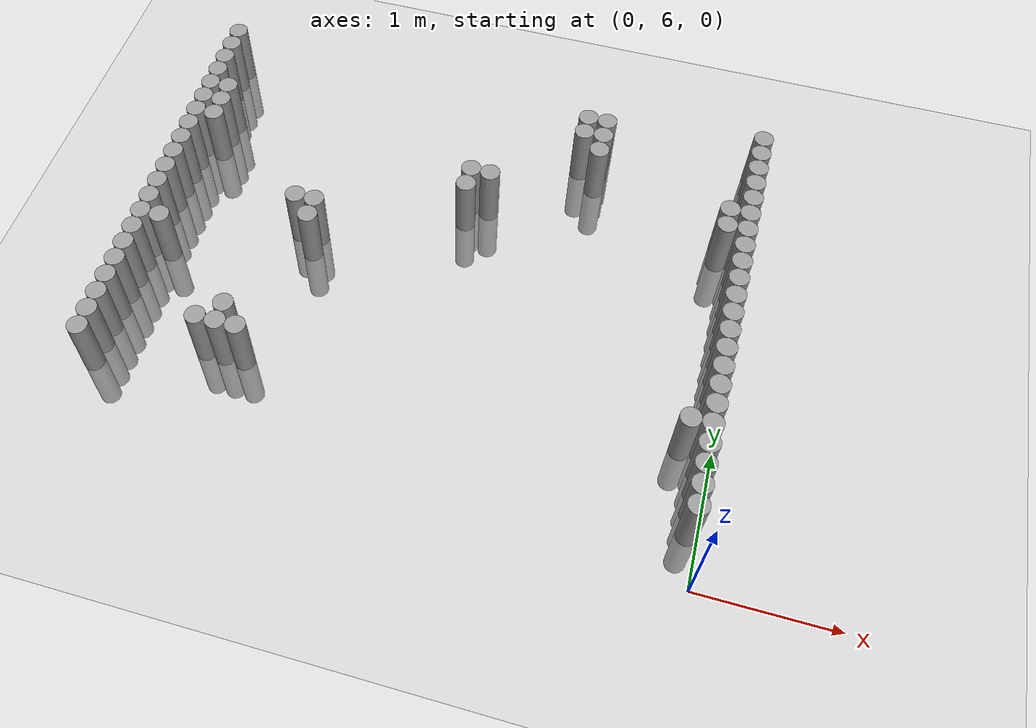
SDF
<sdf version="1.6">
 <world name="default">
  <model name="ground_plane">
   <static>1</static>
   <link name="link">
    <collision name="collision">
     <geometry><plane><normal>0 0 1</normal><size>100 100</size></plane></geometry>
     <surface><friction><ode><mu>100</mu><mu2>50</mu2></ode></friction></surface>
    </collision>
    <visual name="visual">
     <cast_shadows>0</cast_shadows>
     <geometry><plane><normal>0 0 1</normal><size>100 100</size></plane></geometry>
     <material>
      <script><uri>file://media/materials/scripts/gazebo.material</uri><name>Gazebo/Grey</name></script>
     </material>
    </visual>
   </link>
  </model>
  <model name="unit_cylinder_105">
   <pose>-4.425000 6.525000 0.000000 0.000000 0.000000 0.000000</pose>
   <link name="link">
    <inertial>
     <mass>1</mass>
     <inertia><ixx>0.145833</ixx><ixy>0</ixy><ixz>0</ixz><iyy>0.145833</iyy><iyz>0</iyz><izz>0.125</izz></inertia>
    </inertial>
    <collision name="collision">
     <geometry><cylinder><radius>0.075000</radius><length>1</length></cylinder></geometry>
    </collision>
    <visual name="visual">
     <geometry><cylinder><radius>0.075000</radius><length>1</length></cylinder></geometry>
     <material>
      <script><name>Gazebo/Grey</name><uri>file://media/materials/scripts/gazebo.material</uri></script>
     </material>
    </visual>
   </link>
  </model>
  <model name="unit_cylinder_106">
   <pose>-4.425000 6.675000 0.000000 0.000000 0.000000 0.000000</pose>
   <link name="link">
    <inertial>
     <mass>1</mass>
     <inertia><ixx>0.145833</ixx><ixy>0</ixy><ixz>0</ixz><iyy>0.145833</iyy><iyz>0</iyz><izz>0.125</izz></inertia>
    </inertial>
    <collision name="collision">
     <geometry><cylinder><radius>0.075000</radius><length>1</length></cylinder></geometry>
    </collision>
    <visual name="visual">
     <geometry><cylinder><radius>0.075000</radius><length>1</length></cylinder></geometry>
     <material>
      <script><name>Gazebo/Grey</name><uri>file://media/materials/scripts/gazebo.material</uri></script>
     </material>
    </visual>
   </link>
  </model>
  <model name="unit_cylinder_107">
   <pose>-4.425000 6.825000 0.000000 0.000000 0.000000 0.000000</pose>
   <link name="link">
    <inertial>
     <mass>1</mass>
     <inertia><ixx>0.145833</ixx><ixy>0</ixy><ixz>0</ixz><iyy>0.145833</iyy><iyz>0</iyz><izz>0.125</izz></inertia>
    </inertial>
    <collision name="collision">
     <geometry><cylinder><radius>0.075000</radius><length>1</length></cylinder></geometry>
    </collision>
    <visual name="visual">
     <geometry><cylinder><radius>0.075000</radius><length>1</length></cylinder></geometry>
     <material>
      <script><name>Gazebo/Grey</name><uri>file://media/materials/scripts/gazebo.material</uri></script>
     </material>
    </visual>
   </link>
  </model>
  <model name="unit_cylinder_108">
   <pose>-4.425000 6.975000 0.000000 0.000000 0.000000 0.000000</pose>
   <link name="link">
    <inertial>
     <mass>1</mass>
     <inertia><ixx>0.145833</ixx><ixy>0</ixy><ixz>0</ixz><iyy>0.145833</iyy><iyz>0</iyz><izz>0.125</izz></inertia>
    </inertial>
    <collision name="collision">
     <geometry><cylinder><radius>0.075000</radius><length>1</length></cylinder></geometry>
    </collision>
    <visual name="visual">
     <geometry><cylinder><radius>0.075000</radius><length>1</length></cylinder></geometry>
     <material>
      <script><name>Gazebo/Grey</name><uri>file://media/materials/scripts/gazebo.material</uri></script>
     </material>
    </visual>
   </link>
  </model>
  <model name="unit_cylinder_109">
   <pose>-4.425000 7.125000 0.000000 0.000000 0.000000 0.000000</pose>
   <link name="link">
    <inertial>
     <mass>1</mass>
     <inertia><ixx>0.145833</ixx><ixy>0</ixy><ixz>0</ixz><iyy>0.145833</iyy><iyz>0</iyz><izz>0.125</izz></inertia>
    </inertial>
    <collision name="collision">
     <geometry><cylinder><radius>0.075000</radius><length>1</length></cylinder></geometry>
    </collision>
    <visual name="visual">
     <geometry><cylinder><radius>0.075000</radius><length>1</length></cylinder></geometry>
     <material>
      <script><name>Gazebo/Grey</name><uri>file://media/materials/scripts/gazebo.material</uri></script>
     </material>
    </visual>
   </link>
  </model>
  <model name="unit_cylinder_110">
   <pose>-4.425000 7.275000 0.000000 0.000000 0.000000 0.000000</pose>
   <link name="link">
    <inertial>
     <mass>1</mass>
     <inertia><ixx>0.145833</ixx><ixy>0</ixy><ixz>0</ixz><iyy>0.145833</iyy><iyz>0</iyz><izz>0.125</izz></inertia>
    </inertial>
    <collision name="collision">
     <geometry><cylinder><radius>0.075000</radius><length>1</length></cylinder></geometry>
    </collision>
    <visual name="visual">
     <geometry><cylinder><radius>0.075000</radius><length>1</length></cylinder></geometry>
     <material>
      <script><name>Gazebo/Grey</name><uri>file://media/materials/scripts/gazebo.material</uri></script>
     </material>
    </visual>
   </link>
  </model>
  <model name="unit_cylinder_111">
   <pose>-4.425000 7.425000 0.000000 0.000000 0.000000 0.000000</pose>
   <link name="link">
    <inertial>
     <mass>1</mass>
     <inertia><ixx>0.145833</ixx><ixy>0</ixy><ixz>0</ixz><iyy>0.145833</iyy><iyz>0</iyz><izz>0.125</izz></inertia>
    </inertial>
    <collision name="collision">
     <geometry><cylinder><radius>0.075000</radius><length>1</length></cylinder></geometry>
    </collision>
    <visual name="visual">
     <geometry><cylinder><radius>0.075000</radius><length>1</length></cylinder></geometry>
     <material>
      <script><name>Gazebo/Grey</name><uri>file://media/materials/scripts/gazebo.material</uri></script>
     </material>
    </visual>
   </link>
  </model>
  <model name="unit_cylinder_112">
   <pose>-4.425000 7.575000 0.000000 0.000000 0.000000 0.000000</pose>
   <link name="link">
    <inertial>
     <mass>1</mass>
     <inertia><ixx>0.145833</ixx><ixy>0</ixy><ixz>0</ixz><iyy>0.145833</iyy><iyz>0</iyz><izz>0.125</izz></inertia>
    </inertial>
    <collision name="collision">
     <geometry><cylinder><radius>0.075000</radius><length>1</length></cylinder></geometry>
    </collision>
    <visual name="visual">
     <geometry><cylinder><radius>0.075000</radius><length>1</length></cylinder></geometry>
     <material>
      <script><name>Gazebo/Grey</name><uri>file://media/materials/scripts/gazebo.material</uri></script>
     </material>
    </visual>
   </link>
  </model>
  <model name="unit_cylinder_113">
   <pose>-4.425000 7.725000 0.000000 0.000000 0.000000 0.000000</pose>
   <link name="link">
    <inertial>
     <mass>1</mass>
     <inertia><ixx>0.145833</ixx><ixy>0</ixy><ixz>0</ixz><iyy>0.145833</iyy><iyz>0</iyz><izz>0.125</izz></inertia>
    </inertial>
    <collision name="collision">
     <geometry><cylinder><radius>0.075000</radius><length>1</length></cylinder></geometry>
    </collision>
    <visual name="visual">
     <geometry><cylinder><radius>0.075000</radius><length>1</length></cylinder></geometry>
     <material>
      <script><name>Gazebo/Grey</name><uri>file://media/materials/scripts/gazebo.material</uri></script>
     </material>
    </visual>
   </link>
  </model>
  <model name="unit_cylinder_114">
   <pose>-4.425000 7.875000 0.000000 0.000000 0.000000 0.000000</pose>
   <link name="link">
    <inertial>
     <mass>1</mass>
     <inertia><ixx>0.145833</ixx><ixy>0</ixy><ixz>0</ixz><iyy>0.145833</iyy><iyz>0</iyz><izz>0.125</izz></inertia>
    </inertial>
    <collision name="collision">
     <geometry><cylinder><radius>0.075000</radius><length>1</length></cylinder></geometry>
    </collision>
    <visual name="visual">
     <geometry><cylinder><radius>0.075000</radius><length>1</length></cylinder></geometry>
     <material>
      <script><name>Gazebo/Grey</name><uri>file://media/materials/scripts/gazebo.material</uri></script>
     </material>
    </visual>
   </link>
  </model>
  <model name="unit_cylinder_115">
   <pose>-4.425000 8.025000 0.000000 0.000000 0.000000 0.000000</pose>
   <link name="link">
    <inertial>
     <mass>1</mass>
     <inertia><ixx>0.145833</ixx><ixy>0</ixy><ixz>0</ixz><iyy>0.145833</iyy><iyz>0</iyz><izz>0.125</izz></inertia>
    </inertial>
    <collision name="collision">
     <geometry><cylinder><radius>0.075000</radius><length>1</length></cylinder></geometry>
    </collision>
    <visual name="visual">
     <geometry><cylinder><radius>0.075000</radius><length>1</length></cylinder></geometry>
     <material>
      <script><name>Gazebo/Grey</name><uri>file://media/materials/scripts/gazebo.material</uri></script>
     </material>
    </visual>
   </link>
  </model>
  <model name="unit_cylinder_116">
   <pose>-4.425000 8.175000 0.000000 0.000000 0.000000 0.000000</pose>
   <link name="link">
    <inertial>
     <mass>1</mass>
     <inertia><ixx>0.145833</ixx><ixy>0</ixy><ixz>0</ixz><iyy>0.145833</iyy><iyz>0</iyz><izz>0.125</izz></inertia>
    </inertial>
    <collision name="collision">
     <geometry><cylinder><radius>0.075000</radius><length>1</length></cylinder></geometry>
    </collision>
    <visual name="visual">
     <geometry><cylinder><radius>0.075000</radius><length>1</length></cylinder></geometry>
     <material>
      <script><name>Gazebo/Grey</name><uri>file://media/materials/scripts/gazebo.material</uri></script>
     </material>
    </visual>
   </link>
  </model>
  <model name="unit_cylinder_117">
   <pose>-4.425000 8.325000 0.000000 0.000000 0.000000 0.000000</pose>
   <link name="link">
    <inertial>
     <mass>1</mass>
     <inertia><ixx>0.145833</ixx><ixy>0</ixy><ixz>0</ixz><iyy>0.145833</iyy><iyz>0</iyz><izz>0.125</izz></inertia>
    </inertial>
    <collision name="collision">
     <geometry><cylinder><radius>0.075000</radius><length>1</length></cylinder></geometry>
    </collision>
    <visual name="visual">
     <geometry><cylinder><radius>0.075000</radius><length>1</length></cylinder></geometry>
     <material>
      <script><name>Gazebo/Grey</name><uri>file://media/materials/scripts/gazebo.material</uri></script>
     </material>
    </visual>
   </link>
  </model>
  <model name="unit_cylinder_118">
   <pose>-4.425000 8.475000 0.000000 0.000000 0.000000 0.000000</pose>
   <link name="link">
    <inertial>
     <mass>1</mass>
     <inertia><ixx>0.145833</ixx><ixy>0</ixy><ixz>0</ixz><iyy>0.145833</iyy><iyz>0</iyz><izz>0.125</izz></inertia>
    </inertial>
    <collision name="collision">
     <geometry><cylinder><radius>0.075000</radius><length>1</length></cylinder></geometry>
    </collision>
    <visual name="visual">
     <geometry><cylinder><radius>0.075000</radius><length>1</length></cylinder></geometry>
     <material>
      <script><name>Gazebo/Grey</name><uri>file://media/materials/scripts/gazebo.material</uri></script>
     </material>
    </visual>
   </link>
  </model>
  <model name="unit_cylinder_119">
   <pose>-4.425000 8.625000 0.000000 0.000000 0.000000 0.000000</pose>
   <link name="link">
    <inertial>
     <mass>1</mass>
     <inertia><ixx>0.145833</ixx><ixy>0</ixy><ixz>0</ixz><iyy>0.145833</iyy><iyz>0</iyz><izz>0.125</izz></inertia>
    </inertial>
    <collision name="collision">
     <geometry><cylinder><radius>0.075000</radius><length>1</length></cylinder></geometry>
    </collision>
    <visual name="visual">
     <geometry><cylinder><radius>0.075000</radius><length>1</length></cylinder></geometry>
     <material>
      <script><name>Gazebo/Grey</name><uri>file://media/materials/scripts/gazebo.material</uri></script>
     </material>
    </visual>
   </link>
  </model>
  <model name="unit_cylinder_120">
   <pose>-4.425000 8.775000 0.000000 0.000000 0.000000 0.000000</pose>
   <link name="link">
    <inertial>
     <mass>1</mass>
     <inertia><ixx>0.145833</ixx><ixy>0</ixy><ixz>0</ixz><iyy>0.145833</iyy><iyz>0</iyz><izz>0.125</izz></inertia>
    </inertial>
    <collision name="collision">
     <geometry><cylinder><radius>0.075000</radius><length>1</length></cylinder></geometry>
    </collision>
    <visual name="visual">
     <geometry><cylinder><radius>0.075000</radius><length>1</length></cylinder></geometry>
     <material>
      <script><name>Gazebo/Grey</name><uri>file://media/materials/scripts/gazebo.material</uri></script>
     </material>
    </visual>
   </link>
  </model>
  <model name="unit_cylinder_121">
   <pose>-4.425000 8.925000 0.000000 0.000000 0.000000 0.000000</pose>
   <link name="link">
    <inertial>
     <mass>1</mass>
     <inertia><ixx>0.145833</ixx><ixy>0</ixy><ixz>0</ixz><iyy>0.145833</iyy><iyz>0</iyz><izz>0.125</izz></inertia>
    </inertial>
    <collision name="collision">
     <geometry><cylinder><radius>0.075000</radius><length>1</length></cylinder></geometry>
    </collision>
    <visual name="visual">
     <geometry><cylinder><radius>0.075000</radius><length>1</length></cylinder></geometry>
     <material>
      <script><name>Gazebo/Grey</name><uri>file://media/materials/scripts/gazebo.material</uri></script>
     </material>
    </visual>
   </link>
  </model>
  <model name="unit_cylinder_122">
   <pose>-4.425000 9.075000 0.000000 0.000000 0.000000 0.000000</pose>
   <link name="link">
    <inertial>
     <mass>1</mass>
     <inertia><ixx>0.145833</ixx><ixy>0</ixy><ixz>0</ixz><iyy>0.145833</iyy><iyz>0</iyz><izz>0.125</izz></inertia>
    </inertial>
    <collision name="collision">
     <geometry><cylinder><radius>0.075000</radius><length>1</length></cylinder></geometry>
    </collision>
    <visual name="visual">
     <geometry><cylinder><radius>0.075000</radius><length>1</length></cylinder></geometry>
     <material>
      <script><name>Gazebo/Grey</name><uri>file://media/materials/scripts/gazebo.material</uri></script>
     </material>
    </visual>
   </link>
  </model>
  <model name="unit_cylinder_123">
   <pose>-4.425000 9.225000 0.000000 0.000000 0.000000 0.000000</pose>
   <link name="link">
    <inertial>
     <mass>1</mass>
     <inertia><ixx>0.145833</ixx><ixy>0</ixy><ixz>0</ixz><iyy>0.145833</iyy><iyz>0</iyz><izz>0.125</izz></inertia>
    </inertial>
    <collision name="collision">
     <geometry><cylinder><radius>0.075000</radius><length>1</length></cylinder></geometry>
    </collision>
    <visual name="visual">
     <geometry><cylinder><radius>0.075000</radius><length>1</length></cylinder></geometry>
     <material>
      <script><name>Gazebo/Grey</name><uri>file://media/materials/scripts/gazebo.material</uri></script>
     </material>
    </visual>
   </link>
  </model>
  <model name="unit_cylinder_124">
   <pose>-4.425000 9.375000 0.000000 0.000000 0.000000 0.000000</pose>
   <link name="link">
    <inertial>
     <mass>1</mass>
     <inertia><ixx>0.145833</ixx><ixy>0</ixy><ixz>0</ixz><iyy>0.145833</iyy><iyz>0</iyz><izz>0.125</izz></inertia>
    </inertial>
    <collision name="collision">
     <geometry><cylinder><radius>0.075000</radius><length>1</length></cylinder></geometry>
    </collision>
    <visual name="visual">
     <geometry><cylinder><radius>0.075000</radius><length>1</length></cylinder></geometry>
     <material>
      <script><name>Gazebo/Grey</name><uri>file://media/materials/scripts/gazebo.material</uri></script>
     </material>
    </visual>
   </link>
  </model>
  <model name="unit_cylinder_125">
   <pose>-4.425000 9.525000 0.000000 0.000000 0.000000 0.000000</pose>
   <link name="link">
    <inertial>
     <mass>1</mass>
     <inertia><ixx>0.145833</ixx><ixy>0</ixy><ixz>0</ixz><iyy>0.145833</iyy><iyz>0</iyz><izz>0.125</izz></inertia>
    </inertial>
    <collision name="collision">
     <geometry><cylinder><radius>0.075000</radius><length>1</length></cylinder></geometry>
    </collision>
    <visual name="visual">
     <geometry><cylinder><radius>0.075000</radius><length>1</length></cylinder></geometry>
     <material>
      <script><name>Gazebo/Grey</name><uri>file://media/materials/scripts/gazebo.material</uri></script>
     </material>
    </visual>
   </link>
  </model>
  <model name="unit_cylinder_128">
   <pose>-4.275000 7.575000 0.000000 0.000000 0.000000 0.000000</pose>
   <link name="link">
    <inertial>
     <mass>1</mass>
     <inertia><ixx>0.145833</ixx><ixy>0</ixy><ixz>0</ixz><iyy>0.145833</iyy><iyz>0</iyz><izz>0.125</izz></inertia>
    </inertial>
    <collision name="collision">
     <geometry><cylinder><radius>0.075000</radius><length>1</length></cylinder></geometry>
    </collision>
    <visual name="visual">
     <geometry><cylinder><radius>0.075000</radius><length>1</length></cylinder></geometry>
     <material>
      <script><name>Gazebo/Grey</name><uri>file://media/materials/scripts/gazebo.material</uri></script>
     </material>
    </visual>
   </link>
  </model>
  <model name="unit_cylinder_129">
   <pose>-4.275000 8.625000 0.000000 0.000000 0.000000 0.000000</pose>
   <link name="link">
    <inertial>
     <mass>1</mass>
     <inertia><ixx>0.145833</ixx><ixy>0</ixy><ixz>0</ixz><iyy>0.145833</iyy><iyz>0</iyz><izz>0.125</izz></inertia>
    </inertial>
    <collision name="collision">
     <geometry><cylinder><radius>0.075000</radius><length>1</length></cylinder></geometry>
    </collision>
    <visual name="visual">
     <geometry><cylinder><radius>0.075000</radius><length>1</length></cylinder></geometry>
     <material>
      <script><name>Gazebo/Grey</name><uri>file://media/materials/scripts/gazebo.material</uri></script>
     </material>
    </visual>
   </link>
  </model>
  <model name="unit_cylinder_130">
   <pose>-4.275000 8.775000 0.000000 0.000000 0.000000 0.000000</pose>
   <link name="link">
    <inertial>
     <mass>1</mass>
     <inertia><ixx>0.145833</ixx><ixy>0</ixy><ixz>0</ixz><iyy>0.145833</iyy><iyz>0</iyz><izz>0.125</izz></inertia>
    </inertial>
    <collision name="collision">
     <geometry><cylinder><radius>0.075000</radius><length>1</length></cylinder></geometry>
    </collision>
    <visual name="visual">
     <geometry><cylinder><radius>0.075000</radius><length>1</length></cylinder></geometry>
     <material>
      <script><name>Gazebo/Grey</name><uri>file://media/materials/scripts/gazebo.material</uri></script>
     </material>
    </visual>
   </link>
  </model>
  <model name="unit_cylinder_131">
   <pose>-4.275000 8.925000 0.000000 0.000000 0.000000 0.000000</pose>
   <link name="link">
    <inertial>
     <mass>1</mass>
     <inertia><ixx>0.145833</ixx><ixy>0</ixy><ixz>0</ixz><iyy>0.145833</iyy><iyz>0</iyz><izz>0.125</izz></inertia>
    </inertial>
    <collision name="collision">
     <geometry><cylinder><radius>0.075000</radius><length>1</length></cylinder></geometry>
    </collision>
    <visual name="visual">
     <geometry><cylinder><radius>0.075000</radius><length>1</length></cylinder></geometry>
     <material>
      <script><name>Gazebo/Grey</name><uri>file://media/materials/scripts/gazebo.material</uri></script>
     </material>
    </visual>
   </link>
  </model>
  <model name="unit_cylinder_132">
   <pose>-3.675000 6.825000 0.000000 0.000000 0.000000 0.000000</pose>
   <link name="link">
    <inertial>
     <mass>1</mass>
     <inertia><ixx>0.145833</ixx><ixy>0</ixy><ixz>0</ixz><iyy>0.145833</iyy><iyz>0</iyz><izz>0.125</izz></inertia>
    </inertial>
    <collision name="collision">
     <geometry><cylinder><radius>0.075000</radius><length>1</length></cylinder></geometry>
    </collision>
    <visual name="visual">
     <geometry><cylinder><radius>0.075000</radius><length>1</length></cylinder></geometry>
     <material>
      <script><name>Gazebo/Grey</name><uri>file://media/materials/scripts/gazebo.material</uri></script>
     </material>
    </visual>
   </link>
  </model>
  <model name="unit_cylinder_133">
   <pose>-3.525000 6.825000 0.000000 0.000000 0.000000 0.000000</pose>
   <link name="link">
    <inertial>
     <mass>1</mass>
     <inertia><ixx>0.145833</ixx><ixy>0</ixy><ixz>0</ixz><iyy>0.145833</iyy><iyz>0</iyz><izz>0.125</izz></inertia>
    </inertial>
    <collision name="collision">
     <geometry><cylinder><radius>0.075000</radius><length>1</length></cylinder></geometry>
    </collision>
    <visual name="visual">
     <geometry><cylinder><radius>0.075000</radius><length>1</length></cylinder></geometry>
     <material>
      <script><name>Gazebo/Grey</name><uri>file://media/materials/scripts/gazebo.material</uri></script>
     </material>
    </visual>
   </link>
  </model>
  <model name="unit_cylinder_134">
   <pose>-3.525000 6.975000 0.000000 0.000000 0.000000 0.000000</pose>
   <link name="link">
    <inertial>
     <mass>1</mass>
     <inertia><ixx>0.145833</ixx><ixy>0</ixy><ixz>0</ixz><iyy>0.145833</iyy><iyz>0</iyz><izz>0.125</izz></inertia>
    </inertial>
    <collision name="collision">
     <geometry><cylinder><radius>0.075000</radius><length>1</length></cylinder></geometry>
    </collision>
    <visual name="visual">
     <geometry><cylinder><radius>0.075000</radius><length>1</length></cylinder></geometry>
     <material>
      <script><name>Gazebo/Grey</name><uri>file://media/materials/scripts/gazebo.material</uri></script>
     </material>
    </visual>
   </link>
  </model>
  <model name="unit_cylinder_135">
   <pose>-3.375000 6.825000 0.000000 0.000000 0.000000 0.000000</pose>
   <link name="link">
    <inertial>
     <mass>1</mass>
     <inertia><ixx>0.145833</ixx><ixy>0</ixy><ixz>0</ixz><iyy>0.145833</iyy><iyz>0</iyz><izz>0.125</izz></inertia>
    </inertial>
    <collision name="collision">
     <geometry><cylinder><radius>0.075000</radius><length>1</length></cylinder></geometry>
    </collision>
    <visual name="visual">
     <geometry><cylinder><radius>0.075000</radius><length>1</length></cylinder></geometry>
     <material>
      <script><name>Gazebo/Grey</name><uri>file://media/materials/scripts/gazebo.material</uri></script>
     </material>
    </visual>
   </link>
  </model>
  <model name="unit_cylinder_136">
   <pose>-3.375000 8.025000 0.000000 0.000000 0.000000 0.000000</pose>
   <link name="link">
    <inertial>
     <mass>1</mass>
     <inertia><ixx>0.145833</ixx><ixy>0</ixy><ixz>0</ixz><iyy>0.145833</iyy><iyz>0</iyz><izz>0.125</izz></inertia>
    </inertial>
    <collision name="collision">
     <geometry><cylinder><radius>0.075000</radius><length>1</length></cylinder></geometry>
    </collision>
    <visual name="visual">
     <geometry><cylinder><radius>0.075000</radius><length>1</length></cylinder></geometry>
     <material>
      <script><name>Gazebo/Grey</name><uri>file://media/materials/scripts/gazebo.material</uri></script>
     </material>
    </visual>
   </link>
  </model>
  <model name="unit_cylinder_137">
   <pose>-3.225000 7.875000 0.000000 0.000000 0.000000 0.000000</pose>
   <link name="link">
    <inertial>
     <mass>1</mass>
     <inertia><ixx>0.145833</ixx><ixy>0</ixy><ixz>0</ixz><iyy>0.145833</iyy><iyz>0</iyz><izz>0.125</izz></inertia>
    </inertial>
    <collision name="collision">
     <geometry><cylinder><radius>0.075000</radius><length>1</length></cylinder></geometry>
    </collision>
    <visual name="visual">
     <geometry><cylinder><radius>0.075000</radius><length>1</length></cylinder></geometry>
     <material>
      <script><name>Gazebo/Grey</name><uri>file://media/materials/scripts/gazebo.material</uri></script>
     </material>
    </visual>
   </link>
  </model>
  <model name="unit_cylinder_138">
   <pose>-3.225000 8.025000 0.000000 0.000000 0.000000 0.000000</pose>
   <link name="link">
    <inertial>
     <mass>1</mass>
     <inertia><ixx>0.145833</ixx><ixy>0</ixy><ixz>0</ixz><iyy>0.145833</iyy><iyz>0</iyz><izz>0.125</izz></inertia>
    </inertial>
    <collision name="collision">
     <geometry><cylinder><radius>0.075000</radius><length>1</length></cylinder></geometry>
    </collision>
    <visual name="visual">
     <geometry><cylinder><radius>0.075000</radius><length>1</length></cylinder></geometry>
     <material>
      <script><name>Gazebo/Grey</name><uri>file://media/materials/scripts/gazebo.material</uri></script>
     </material>
    </visual>
   </link>
  </model>
  <model name="unit_cylinder_149">
   <pose>-2.175000 8.475000 0.000000 0.000000 0.000000 0.000000</pose>
   <link name="link">
    <inertial>
     <mass>1</mass>
     <inertia><ixx>0.145833</ixx><ixy>0</ixy><ixz>0</ixz><iyy>0.145833</iyy><iyz>0</iyz><izz>0.125</izz></inertia>
    </inertial>
    <collision name="collision">
     <geometry><cylinder><radius>0.075000</radius><length>1</length></cylinder></geometry>
    </collision>
    <visual name="visual">
     <geometry><cylinder><radius>0.075000</radius><length>1</length></cylinder></geometry>
     <material>
      <script><name>Gazebo/Grey</name><uri>file://media/materials/scripts/gazebo.material</uri></script>
     </material>
    </visual>
   </link>
  </model>
  <model name="unit_cylinder_150">
   <pose>-2.175000 8.625000 0.000000 0.000000 0.000000 0.000000</pose>
   <link name="link">
    <inertial>
     <mass>1</mass>
     <inertia><ixx>0.145833</ixx><ixy>0</ixy><ixz>0</ixz><iyy>0.145833</iyy><iyz>0</iyz><izz>0.125</izz></inertia>
    </inertial>
    <collision name="collision">
     <geometry><cylinder><radius>0.075000</radius><length>1</length></cylinder></geometry>
    </collision>
    <visual name="visual">
     <geometry><cylinder><radius>0.075000</radius><length>1</length></cylinder></geometry>
     <material>
      <script><name>Gazebo/Grey</name><uri>file://media/materials/scripts/gazebo.material</uri></script>
     </material>
    </visual>
   </link>
  </model>
  <model name="unit_cylinder_151">
   <pose>-2.025000 8.625000 0.000000 0.000000 0.000000 0.000000</pose>
   <link name="link">
    <inertial>
     <mass>1</mass>
     <inertia><ixx>0.145833</ixx><ixy>0</ixy><ixz>0</ixz><iyy>0.145833</iyy><iyz>0</iyz><izz>0.125</izz></inertia>
    </inertial>
    <collision name="collision">
     <geometry><cylinder><radius>0.075000</radius><length>1</length></cylinder></geometry>
    </collision>
    <visual name="visual">
     <geometry><cylinder><radius>0.075000</radius><length>1</length></cylinder></geometry>
     <material>
      <script><name>Gazebo/Grey</name><uri>file://media/materials/scripts/gazebo.material</uri></script>
     </material>
    </visual>
   </link>
  </model>
  <model name="unit_cylinder_152">
   <pose>-1.425000 9.225000 0.000000 0.000000 0.000000 0.000000</pose>
   <link name="link">
    <inertial>
     <mass>1</mass>
     <inertia><ixx>0.145833</ixx><ixy>0</ixy><ixz>0</ixz><iyy>0.145833</iyy><iyz>0</iyz><izz>0.125</izz></inertia>
    </inertial>
    <collision name="collision">
     <geometry><cylinder><radius>0.075000</radius><length>1</length></cylinder></geometry>
    </collision>
    <visual name="visual">
     <geometry><cylinder><radius>0.075000</radius><length>1</length></cylinder></geometry>
     <material>
      <script><name>Gazebo/Grey</name><uri>file://media/materials/scripts/gazebo.material</uri></script>
     </material>
    </visual>
   </link>
  </model>
  <model name="unit_cylinder_153">
   <pose>-1.425000 9.375000 0.000000 0.000000 0.000000 0.000000</pose>
   <link name="link">
    <inertial>
     <mass>1</mass>
     <inertia><ixx>0.145833</ixx><ixy>0</ixy><ixz>0</ixz><iyy>0.145833</iyy><iyz>0</iyz><izz>0.125</izz></inertia>
    </inertial>
    <collision name="collision">
     <geometry><cylinder><radius>0.075000</radius><length>1</length></cylinder></geometry>
    </collision>
    <visual name="visual">
     <geometry><cylinder><radius>0.075000</radius><length>1</length></cylinder></geometry>
     <material>
      <script><name>Gazebo/Grey</name><uri>file://media/materials/scripts/gazebo.material</uri></script>
     </material>
    </visual>
   </link>
  </model>
  <model name="unit_cylinder_154">
   <pose>-1.275000 9.075000 0.000000 0.000000 0.000000 0.000000</pose>
   <link name="link">
    <inertial>
     <mass>1</mass>
     <inertia><ixx>0.145833</ixx><ixy>0</ixy><ixz>0</ixz><iyy>0.145833</iyy><iyz>0</iyz><izz>0.125</izz></inertia>
    </inertial>
    <collision name="collision">
     <geometry><cylinder><radius>0.075000</radius><length>1</length></cylinder></geometry>
    </collision>
    <visual name="visual">
     <geometry><cylinder><radius>0.075000</radius><length>1</length></cylinder></geometry>
     <material>
      <script><name>Gazebo/Grey</name><uri>file://media/materials/scripts/gazebo.material</uri></script>
     </material>
    </visual>
   </link>
  </model>
  <model name="unit_cylinder_155">
   <pose>-1.275000 9.225000 0.000000 0.000000 0.000000 0.000000</pose>
   <link name="link">
    <inertial>
     <mass>1</mass>
     <inertia><ixx>0.145833</ixx><ixy>0</ixy><ixz>0</ixz><iyy>0.145833</iyy><iyz>0</iyz><izz>0.125</izz></inertia>
    </inertial>
    <collision name="collision">
     <geometry><cylinder><radius>0.075000</radius><length>1</length></cylinder></geometry>
    </collision>
    <visual name="visual">
     <geometry><cylinder><radius>0.075000</radius><length>1</length></cylinder></geometry>
     <material>
      <script><name>Gazebo/Grey</name><uri>file://media/materials/scripts/gazebo.material</uri></script>
     </material>
    </visual>
   </link>
  </model>
  <model name="unit_cylinder_156">
   <pose>-1.275000 9.375000 0.000000 0.000000 0.000000 0.000000</pose>
   <link name="link">
    <inertial>
     <mass>1</mass>
     <inertia><ixx>0.145833</ixx><ixy>0</ixy><ixz>0</ixz><iyy>0.145833</iyy><iyz>0</iyz><izz>0.125</izz></inertia>
    </inertial>
    <collision name="collision">
     <geometry><cylinder><radius>0.075000</radius><length>1</length></cylinder></geometry>
    </collision>
    <visual name="visual">
     <geometry><cylinder><radius>0.075000</radius><length>1</length></cylinder></geometry>
     <material>
      <script><name>Gazebo/Grey</name><uri>file://media/materials/scripts/gazebo.material</uri></script>
     </material>
    </visual>
   </link>
  </model>
  <model name="unit_cylinder_161">
   <pose>-0.225000 6.975000 0.000000 0.000000 0.000000 0.000000</pose>
   <link name="link">
    <inertial>
     <mass>1</mass>
     <inertia><ixx>0.145833</ixx><ixy>0</ixy><ixz>0</ixz><iyy>0.145833</iyy><iyz>0</iyz><izz>0.125</izz></inertia>
    </inertial>
    <collision name="collision">
     <geometry><cylinder><radius>0.075000</radius><length>1</length></cylinder></geometry>
    </collision>
    <visual name="visual">
     <geometry><cylinder><radius>0.075000</radius><length>1</length></cylinder></geometry>
     <material>
      <script><name>Gazebo/Grey</name><uri>file://media/materials/scripts/gazebo.material</uri></script>
     </material>
    </visual>
   </link>
  </model>
  <model name="unit_cylinder_162">
   <pose>-0.225000 8.625000 0.000000 0.000000 0.000000 0.000000</pose>
   <link name="link">
    <inertial>
     <mass>1</mass>
     <inertia><ixx>0.145833</ixx><ixy>0</ixy><ixz>0</ixz><iyy>0.145833</iyy><iyz>0</iyz><izz>0.125</izz></inertia>
    </inertial>
    <collision name="collision">
     <geometry><cylinder><radius>0.075000</radius><length>1</length></cylinder></geometry>
    </collision>
    <visual name="visual">
     <geometry><cylinder><radius>0.075000</radius><length>1</length></cylinder></geometry>
     <material>
      <script><name>Gazebo/Grey</name><uri>file://media/materials/scripts/gazebo.material</uri></script>
     </material>
    </visual>
   </link>
  </model>
  <model name="unit_cylinder_163">
   <pose>-0.225000 8.775000 0.000000 0.000000 0.000000 0.000000</pose>
   <link name="link">
    <inertial>
     <mass>1</mass>
     <inertia><ixx>0.145833</ixx><ixy>0</ixy><ixz>0</ixz><iyy>0.145833</iyy><iyz>0</iyz><izz>0.125</izz></inertia>
    </inertial>
    <collision name="collision">
     <geometry><cylinder><radius>0.075000</radius><length>1</length></cylinder></geometry>
    </collision>
    <visual name="visual">
     <geometry><cylinder><radius>0.075000</radius><length>1</length></cylinder></geometry>
     <material>
      <script><name>Gazebo/Grey</name><uri>file://media/materials/scripts/gazebo.material</uri></script>
     </material>
    </visual>
   </link>
  </model>
  <model name="unit_cylinder_172">
   <pose>-0.075000 6.375000 0.000000 0.000000 0.000000 0.000000</pose>
   <link name="link">
    <inertial>
     <mass>1</mass>
     <inertia><ixx>0.145833</ixx><ixy>0</ixy><ixz>0</ixz><iyy>0.145833</iyy><iyz>0</iyz><izz>0.125</izz></inertia>
    </inertial>
    <collision name="collision">
     <geometry><cylinder><radius>0.075000</radius><length>1</length></cylinder></geometry>
    </collision>
    <visual name="visual">
     <geometry><cylinder><radius>0.075000</radius><length>1</length></cylinder></geometry>
     <material>
      <script><name>Gazebo/Grey</name><uri>file://media/materials/scripts/gazebo.material</uri></script>
     </material>
    </visual>
   </link>
  </model>
  <model name="unit_cylinder_173">
   <pose>-0.075000 6.525000 0.000000 0.000000 0.000000 0.000000</pose>
   <link name="link">
    <inertial>
     <mass>1</mass>
     <inertia><ixx>0.145833</ixx><ixy>0</ixy><ixz>0</ixz><iyy>0.145833</iyy><iyz>0</iyz><izz>0.125</izz></inertia>
    </inertial>
    <collision name="collision">
     <geometry><cylinder><radius>0.075000</radius><length>1</length></cylinder></geometry>
    </collision>
    <visual name="visual">
     <geometry><cylinder><radius>0.075000</radius><length>1</length></cylinder></geometry>
     <material>
      <script><name>Gazebo/Grey</name><uri>file://media/materials/scripts/gazebo.material</uri></script>
     </material>
    </visual>
   </link>
  </model>
  <model name="unit_cylinder_174">
   <pose>-0.075000 6.675000 0.000000 0.000000 0.000000 0.000000</pose>
   <link name="link">
    <inertial>
     <mass>1</mass>
     <inertia><ixx>0.145833</ixx><ixy>0</ixy><ixz>0</ixz><iyy>0.145833</iyy><iyz>0</iyz><izz>0.125</izz></inertia>
    </inertial>
    <collision name="collision">
     <geometry><cylinder><radius>0.075000</radius><length>1</length></cylinder></geometry>
    </collision>
    <visual name="visual">
     <geometry><cylinder><radius>0.075000</radius><length>1</length></cylinder></geometry>
     <material>
      <script><name>Gazebo/Grey</name><uri>file://media/materials/scripts/gazebo.material</uri></script>
     </material>
    </visual>
   </link>
  </model>
  <model name="unit_cylinder_175">
   <pose>-0.075000 6.825000 0.000000 0.000000 0.000000 0.000000</pose>
   <link name="link">
    <inertial>
     <mass>1</mass>
     <inertia><ixx>0.145833</ixx><ixy>0</ixy><ixz>0</ixz><iyy>0.145833</iyy><iyz>0</iyz><izz>0.125</izz></inertia>
    </inertial>
    <collision name="collision">
     <geometry><cylinder><radius>0.075000</radius><length>1</length></cylinder></geometry>
    </collision>
    <visual name="visual">
     <geometry><cylinder><radius>0.075000</radius><length>1</length></cylinder></geometry>
     <material>
      <script><name>Gazebo/Grey</name><uri>file://media/materials/scripts/gazebo.material</uri></script>
     </material>
    </visual>
   </link>
  </model>
  <model name="unit_cylinder_176">
   <pose>-0.075000 6.975000 0.000000 0.000000 0.000000 0.000000</pose>
   <link name="link">
    <inertial>
     <mass>1</mass>
     <inertia><ixx>0.145833</ixx><ixy>0</ixy><ixz>0</ixz><iyy>0.145833</iyy><iyz>0</iyz><izz>0.125</izz></inertia>
    </inertial>
    <collision name="collision">
     <geometry><cylinder><radius>0.075000</radius><length>1</length></cylinder></geometry>
    </collision>
    <visual name="visual">
     <geometry><cylinder><radius>0.075000</radius><length>1</length></cylinder></geometry>
     <material>
      <script><name>Gazebo/Grey</name><uri>file://media/materials/scripts/gazebo.material</uri></script>
     </material>
    </visual>
   </link>
  </model>
  <model name="unit_cylinder_177">
   <pose>-0.075000 7.125000 0.000000 0.000000 0.000000 0.000000</pose>
   <link name="link">
    <inertial>
     <mass>1</mass>
     <inertia><ixx>0.145833</ixx><ixy>0</ixy><ixz>0</ixz><iyy>0.145833</iyy><iyz>0</iyz><izz>0.125</izz></inertia>
    </inertial>
    <collision name="collision">
     <geometry><cylinder><radius>0.075000</radius><length>1</length></cylinder></geometry>
    </collision>
    <visual name="visual">
     <geometry><cylinder><radius>0.075000</radius><length>1</length></cylinder></geometry>
     <material>
      <script><name>Gazebo/Grey</name><uri>file://media/materials/scripts/gazebo.material</uri></script>
     </material>
    </visual>
   </link>
  </model>
  <model name="unit_cylinder_178">
   <pose>-0.075000 7.275000 0.000000 0.000000 0.000000 0.000000</pose>
   <link name="link">
    <inertial>
     <mass>1</mass>
     <inertia><ixx>0.145833</ixx><ixy>0</ixy><ixz>0</ixz><iyy>0.145833</iyy><iyz>0</iyz><izz>0.125</izz></inertia>
    </inertial>
    <collision name="collision">
     <geometry><cylinder><radius>0.075000</radius><length>1</length></cylinder></geometry>
    </collision>
    <visual name="visual">
     <geometry><cylinder><radius>0.075000</radius><length>1</length></cylinder></geometry>
     <material>
      <script><name>Gazebo/Grey</name><uri>file://media/materials/scripts/gazebo.material</uri></script>
     </material>
    </visual>
   </link>
  </model>
  <model name="unit_cylinder_179">
   <pose>-0.075000 7.425000 0.000000 0.000000 0.000000 0.000000</pose>
   <link name="link">
    <inertial>
     <mass>1</mass>
     <inertia><ixx>0.145833</ixx><ixy>0</ixy><ixz>0</ixz><iyy>0.145833</iyy><iyz>0</iyz><izz>0.125</izz></inertia>
    </inertial>
    <collision name="collision">
     <geometry><cylinder><radius>0.075000</radius><length>1</length></cylinder></geometry>
    </collision>
    <visual name="visual">
     <geometry><cylinder><radius>0.075000</radius><length>1</length></cylinder></geometry>
     <material>
      <script><name>Gazebo/Grey</name><uri>file://media/materials/scripts/gazebo.material</uri></script>
     </material>
    </visual>
   </link>
  </model>
  <model name="unit_cylinder_180">
   <pose>-0.075000 7.575000 0.000000 0.000000 0.000000 0.000000</pose>
   <link name="link">
    <inertial>
     <mass>1</mass>
     <inertia><ixx>0.145833</ixx><ixy>0</ixy><ixz>0</ixz><iyy>0.145833</iyy><iyz>0</iyz><izz>0.125</izz></inertia>
    </inertial>
    <collision name="collision">
     <geometry><cylinder><radius>0.075000</radius><length>1</length></cylinder></geometry>
    </collision>
    <visual name="visual">
     <geometry><cylinder><radius>0.075000</radius><length>1</length></cylinder></geometry>
     <material>
      <script><name>Gazebo/Grey</name><uri>file://media/materials/scripts/gazebo.material</uri></script>
     </material>
    </visual>
   </link>
  </model>
  <model name="unit_cylinder_181">
   <pose>-0.075000 7.725000 0.000000 0.000000 0.000000 0.000000</pose>
   <link name="link">
    <inertial>
     <mass>1</mass>
     <inertia><ixx>0.145833</ixx><ixy>0</ixy><ixz>0</ixz><iyy>0.145833</iyy><iyz>0</iyz><izz>0.125</izz></inertia>
    </inertial>
    <collision name="collision">
     <geometry><cylinder><radius>0.075000</radius><length>1</length></cylinder></geometry>
    </collision>
    <visual name="visual">
     <geometry><cylinder><radius>0.075000</radius><length>1</length></cylinder></geometry>
     <material>
      <script><name>Gazebo/Grey</name><uri>file://media/materials/scripts/gazebo.material</uri></script>
     </material>
    </visual>
   </link>
  </model>
  <model name="unit_cylinder_182">
   <pose>-0.075000 7.875000 0.000000 0.000000 0.000000 0.000000</pose>
   <link name="link">
    <inertial>
     <mass>1</mass>
     <inertia><ixx>0.145833</ixx><ixy>0</ixy><ixz>0</ixz><iyy>0.145833</iyy><iyz>0</iyz><izz>0.125</izz></inertia>
    </inertial>
    <collision name="collision">
     <geometry><cylinder><radius>0.075000</radius><length>1</length></cylinder></geometry>
    </collision>
    <visual name="visual">
     <geometry><cylinder><radius>0.075000</radius><length>1</length></cylinder></geometry>
     <material>
      <script><name>Gazebo/Grey</name><uri>file://media/materials/scripts/gazebo.material</uri></script>
     </material>
    </visual>
   </link>
  </model>
  <model name="unit_cylinder_183">
   <pose>-0.075000 8.025000 0.000000 0.000000 0.000000 0.000000</pose>
   <link name="link">
    <inertial>
     <mass>1</mass>
     <inertia><ixx>0.145833</ixx><ixy>0</ixy><ixz>0</ixz><iyy>0.145833</iyy><iyz>0</iyz><izz>0.125</izz></inertia>
    </inertial>
    <collision name="collision">
     <geometry><cylinder><radius>0.075000</radius><length>1</length></cylinder></geometry>
    </collision>
    <visual name="visual">
     <geometry><cylinder><radius>0.075000</radius><length>1</length></cylinder></geometry>
     <material>
      <script><name>Gazebo/Grey</name><uri>file://media/materials/scripts/gazebo.material</uri></script>
     </material>
    </visual>
   </link>
  </model>
  <model name="unit_cylinder_184">
   <pose>-0.075000 8.175000 0.000000 0.000000 0.000000 0.000000</pose>
   <link name="link">
    <inertial>
     <mass>1</mass>
     <inertia><ixx>0.145833</ixx><ixy>0</ixy><ixz>0</ixz><iyy>0.145833</iyy><iyz>0</iyz><izz>0.125</izz></inertia>
    </inertial>
    <collision name="collision">
     <geometry><cylinder><radius>0.075000</radius><length>1</length></cylinder></geometry>
    </collision>
    <visual name="visual">
     <geometry><cylinder><radius>0.075000</radius><length>1</length></cylinder></geometry>
     <material>
      <script><name>Gazebo/Grey</name><uri>file://media/materials/scripts/gazebo.material</uri></script>
     </material>
    </visual>
   </link>
  </model>
  <model name="unit_cylinder_185">
   <pose>-0.075000 8.325000 0.000000 0.000000 0.000000 0.000000</pose>
   <link name="link">
    <inertial>
     <mass>1</mass>
     <inertia><ixx>0.145833</ixx><ixy>0</ixy><ixz>0</ixz><iyy>0.145833</iyy><iyz>0</iyz><izz>0.125</izz></inertia>
    </inertial>
    <collision name="collision">
     <geometry><cylinder><radius>0.075000</radius><length>1</length></cylinder></geometry>
    </collision>
    <visual name="visual">
     <geometry><cylinder><radius>0.075000</radius><length>1</length></cylinder></geometry>
     <material>
      <script><name>Gazebo/Grey</name><uri>file://media/materials/scripts/gazebo.material</uri></script>
     </material>
    </visual>
   </link>
  </model>
  <model name="unit_cylinder_186">
   <pose>-0.075000 8.475000 0.000000 0.000000 0.000000 0.000000</pose>
   <link name="link">
    <inertial>
     <mass>1</mass>
     <inertia><ixx>0.145833</ixx><ixy>0</ixy><ixz>0</ixz><iyy>0.145833</iyy><iyz>0</iyz><izz>0.125</izz></inertia>
    </inertial>
    <collision name="collision">
     <geometry><cylinder><radius>0.075000</radius><length>1</length></cylinder></geometry>
    </collision>
    <visual name="visual">
     <geometry><cylinder><radius>0.075000</radius><length>1</length></cylinder></geometry>
     <material>
      <script><name>Gazebo/Grey</name><uri>file://media/materials/scripts/gazebo.material</uri></script>
     </material>
    </visual>
   </link>
  </model>
  <model name="unit_cylinder_187">
   <pose>-0.075000 8.625000 0.000000 0.000000 0.000000 0.000000</pose>
   <link name="link">
    <inertial>
     <mass>1</mass>
     <inertia><ixx>0.145833</ixx><ixy>0</ixy><ixz>0</ixz><iyy>0.145833</iyy><iyz>0</iyz><izz>0.125</izz></inertia>
    </inertial>
    <collision name="collision">
     <geometry><cylinder><radius>0.075000</radius><length>1</length></cylinder></geometry>
    </collision>
    <visual name="visual">
     <geometry><cylinder><radius>0.075000</radius><length>1</length></cylinder></geometry>
     <material>
      <script><name>Gazebo/Grey</name><uri>file://media/materials/scripts/gazebo.material</uri></script>
     </material>
    </visual>
   </link>
  </model>
  <model name="unit_cylinder_188">
   <pose>-0.075000 8.775000 0.000000 0.000000 0.000000 0.000000</pose>
   <link name="link">
    <inertial>
     <mass>1</mass>
     <inertia><ixx>0.145833</ixx><ixy>0</ixy><ixz>0</ixz><iyy>0.145833</iyy><iyz>0</iyz><izz>0.125</izz></inertia>
    </inertial>
    <collision name="collision">
     <geometry><cylinder><radius>0.075000</radius><length>1</length></cylinder></geometry>
    </collision>
    <visual name="visual">
     <geometry><cylinder><radius>0.075000</radius><length>1</length></cylinder></geometry>
     <material>
      <script><name>Gazebo/Grey</name><uri>file://media/materials/scripts/gazebo.material</uri></script>
     </material>
    </visual>
   </link>
  </model>
  <model name="unit_cylinder_189">
   <pose>-0.075000 8.925000 0.000000 0.000000 0.000000 0.000000</pose>
   <link name="link">
    <inertial>
     <mass>1</mass>
     <inertia><ixx>0.145833</ixx><ixy>0</ixy><ixz>0</ixz><iyy>0.145833</iyy><iyz>0</iyz><izz>0.125</izz></inertia>
    </inertial>
    <collision name="collision">
     <geometry><cylinder><radius>0.075000</radius><length>1</length></cylinder></geometry>
    </collision>
    <visual name="visual">
     <geometry><cylinder><radius>0.075000</radius><length>1</length></cylinder></geometry>
     <material>
      <script><name>Gazebo/Grey</name><uri>file://media/materials/scripts/gazebo.material</uri></script>
     </material>
    </visual>
   </link>
  </model>
  <model name="unit_cylinder_190">
   <pose>-0.075000 9.075000 0.000000 0.000000 0.000000 0.000000</pose>
   <link name="link">
    <inertial>
     <mass>1</mass>
     <inertia><ixx>0.145833</ixx><ixy>0</ixy><ixz>0</ixz><iyy>0.145833</iyy><iyz>0</iyz><izz>0.125</izz></inertia>
    </inertial>
    <collision name="collision">
     <geometry><cylinder><radius>0.075000</radius><length>1</length></cylinder></geometry>
    </collision>
    <visual name="visual">
     <geometry><cylinder><radius>0.075000</radius><length>1</length></cylinder></geometry>
     <material>
      <script><name>Gazebo/Grey</name><uri>file://media/materials/scripts/gazebo.material</uri></script>
     </material>
    </visual>
   </link>
  </model>
  <model name="unit_cylinder_191">
   <pose>-0.075000 9.225000 0.000000 0.000000 0.000000 0.000000</pose>
   <link name="link">
    <inertial>
     <mass>1</mass>
     <inertia><ixx>0.145833</ixx><ixy>0</ixy><ixz>0</ixz><iyy>0.145833</iyy><iyz>0</iyz><izz>0.125</izz></inertia>
    </inertial>
    <collision name="collision">
     <geometry><cylinder><radius>0.075000</radius><length>1</length></cylinder></geometry>
    </collision>
    <visual name="visual">
     <geometry><cylinder><radius>0.075000</radius><length>1</length></cylinder></geometry>
     <material>
      <script><name>Gazebo/Grey</name><uri>file://media/materials/scripts/gazebo.material</uri></script>
     </material>
    </visual>
   </link>
  </model>
  <model name="unit_cylinder_192">
   <pose>-0.075000 9.375000 0.000000 0.000000 0.000000 0.000000</pose>
   <link name="link">
    <inertial>
     <mass>1</mass>
     <inertia><ixx>0.145833</ixx><ixy>0</ixy><ixz>0</ixz><iyy>0.145833</iyy><iyz>0</iyz><izz>0.125</izz></inertia>
    </inertial>
    <collision name="collision">
     <geometry><cylinder><radius>0.075000</radius><length>1</length></cylinder></geometry>
    </collision>
    <visual name="visual">
     <geometry><cylinder><radius>0.075000</radius><length>1</length></cylinder></geometry>
     <material>
      <script><name>Gazebo/Grey</name><uri>file://media/materials/scripts/gazebo.material</uri></script>
     </material>
    </visual>
   </link>
  </model>
  <model name="unit_cylinder_193">
   <pose>-0.075000 9.525000 0.000000 0.000000 0.000000 0.000000</pose>
   <link name="link">
    <inertial>
     <mass>1</mass>
     <inertia><ixx>0.145833</ixx><ixy>0</ixy><ixz>0</ixz><iyy>0.145833</iyy><iyz>0</iyz><izz>0.125</izz></inertia>
    </inertial>
    <collision name="collision">
     <geometry><cylinder><radius>0.075000</radius><length>1</length></cylinder></geometry>
    </collision>
    <visual name="visual">
     <geometry><cylinder><radius>0.075000</radius><length>1</length></cylinder></geometry>
     <material>
      <script><name>Gazebo/Grey</name><uri>file://media/materials/scripts/gazebo.material</uri></script>
     </material>
    </visual>
   </link>
  </model>
 </world>
</sdf>
